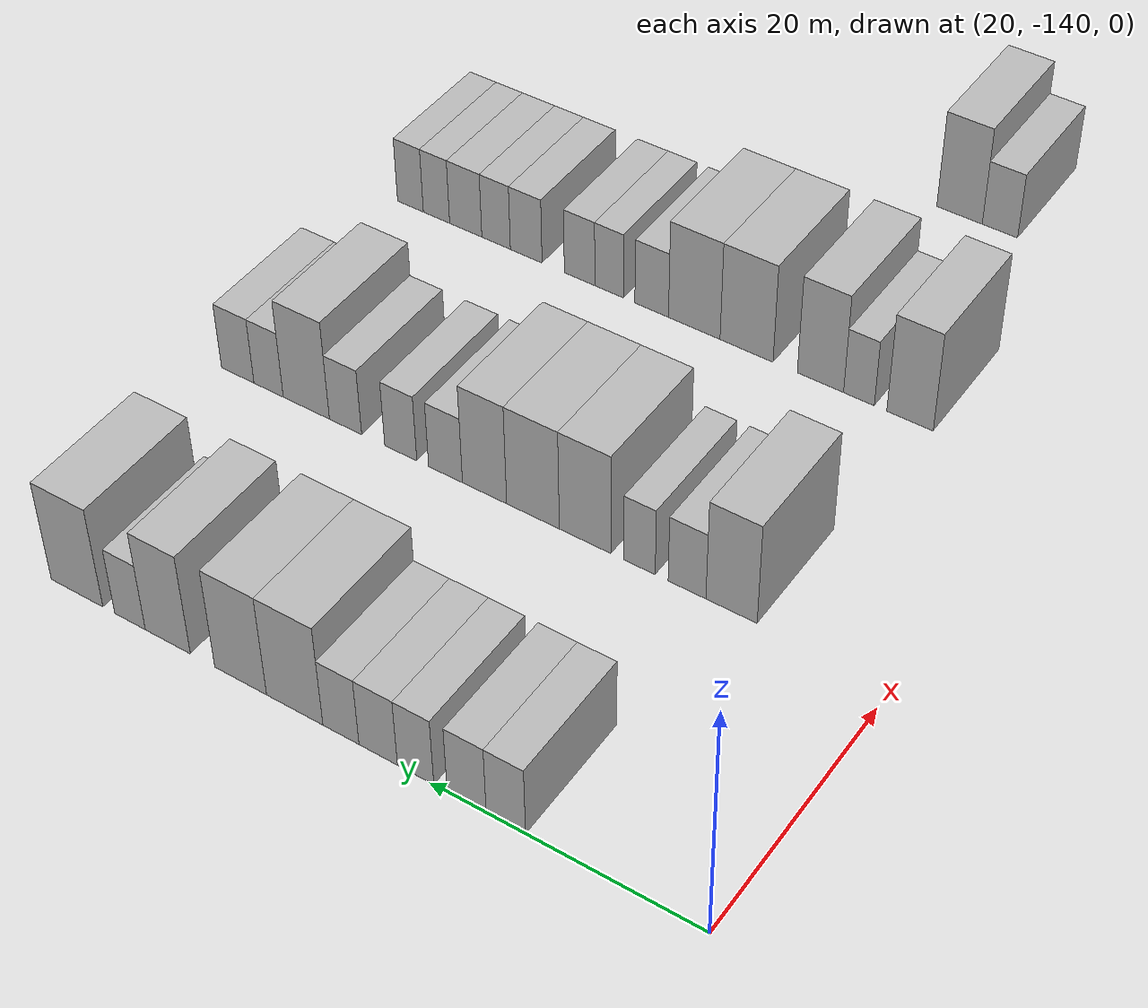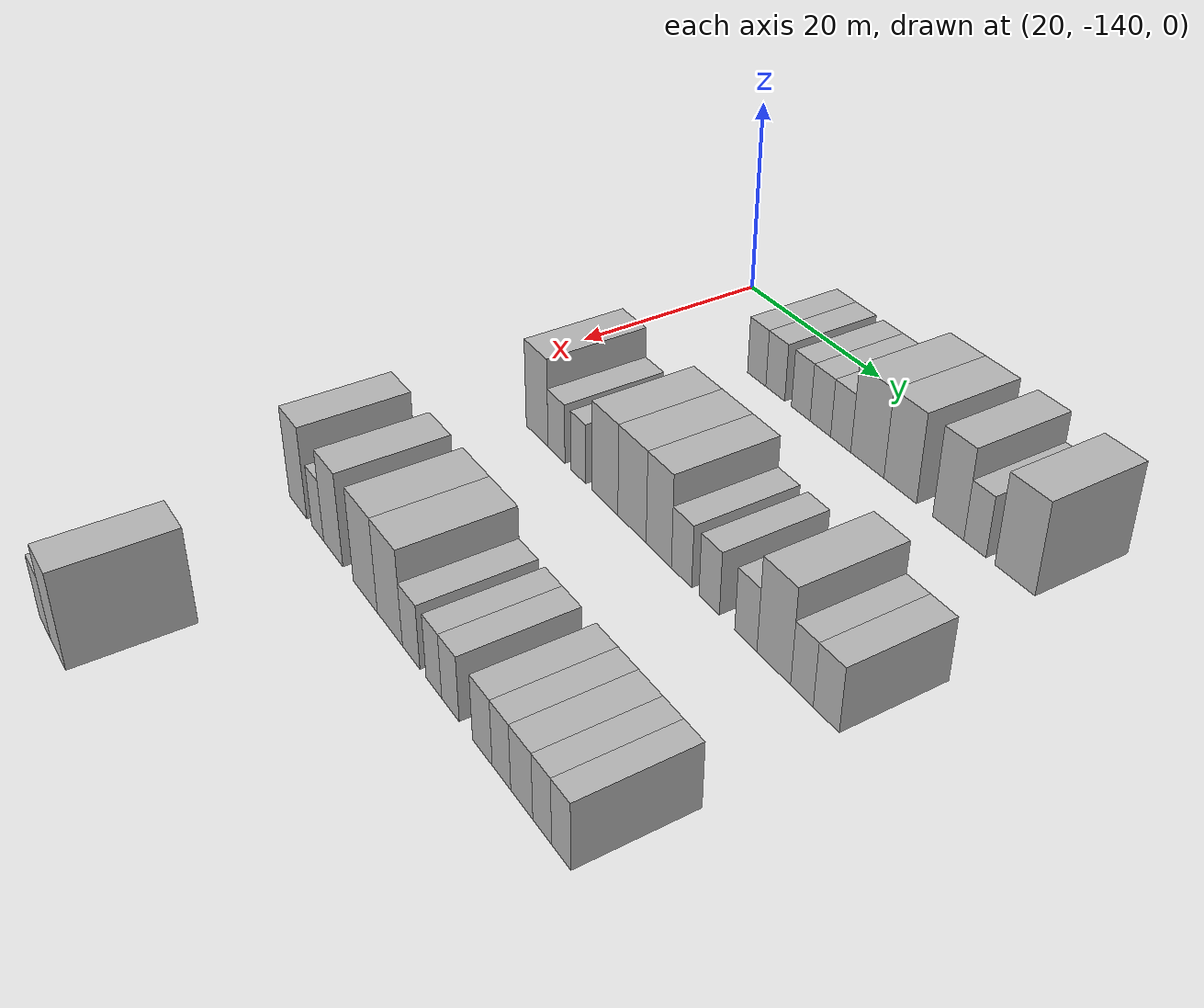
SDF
<sdf version="1.6">
 <world name="default">
  <model name="building_68">
   <static>1</static>
   <pose>25.0000 -125.6321 0 0.000000 0.000000 0.000000</pose>
   <link name="link">
    <pose>0 0 3.00 0 0 0</pose>
    <collision name="collision"><geometry><box><size>10.0000 2.8775 6.0000</size></box></geometry></collision>
    <visual name="visual">
     <cast_shadows>0</cast_shadows>
     <geometry><box><size>10.0000 2.8775 6.0000</size></box></geometry>
     <material>
      <script>
       <uri>model://HANNAS_wall/materials/scripts</uri>
       <uri>model://HANNAS_wall/materials/textures</uri>
       <name>vrc/HANNAS_wall</name>
      </script>
     </material>
    </visual>
   </link>
  </model>
  <model name="building_69">
   <static>1</static>
   <pose>25.0000 -122.7486 0 0.000000 0.000000 0.000000</pose>
   <link name="link">
    <pose>0 0 3.00 0 0 0</pose>
    <collision name="collision"><geometry><box><size>10.0000 2.8895 6.0000</size></box></geometry></collision>
    <visual name="visual">
     <cast_shadows>0</cast_shadows>
     <geometry><box><size>10.0000 2.8895 6.0000</size></box></geometry>
     <material>
      <script>
       <uri>model://HANNAS_wall/materials/scripts</uri>
       <uri>model://HANNAS_wall/materials/textures</uri>
       <name>vrc/HANNAS_wall</name>
      </script>
     </material>
    </visual>
   </link>
  </model>
  <model name="building_70">
   <static>1</static>
   <pose>25.0000 -118.9304 0 0.000000 0.000000 0.000000</pose>
   <link name="link">
    <pose>0 0 3.00 0 0 0</pose>
    <collision name="collision"><geometry><box><size>10.0000 2.7469 6.0000</size></box></geometry></collision>
    <visual name="visual">
     <cast_shadows>0</cast_shadows>
     <geometry><box><size>10.0000 2.7469 6.0000</size></box></geometry>
     <material>
      <script>
       <uri>model://HANNAS_wall/materials/scripts</uri>
       <uri>model://HANNAS_wall/materials/textures</uri>
       <name>vrc/HANNAS_wall</name>
      </script>
     </material>
    </visual>
   </link>
  </model>
  <model name="building_71">
   <static>1</static>
   <pose>25.0000 -116.0844 0 0.000000 0.000000 0.000000</pose>
   <link name="link">
    <pose>0 0 3.00 0 0 0</pose>
    <collision name="collision"><geometry><box><size>10.0000 2.9451 6.0000</size></box></geometry></collision>
    <visual name="visual">
     <cast_shadows>0</cast_shadows>
     <geometry><box><size>10.0000 2.9451 6.0000</size></box></geometry>
     <material>
      <script>
       <uri>model://HANNAS_wall/materials/scripts</uri>
       <uri>model://HANNAS_wall/materials/textures</uri>
       <name>vrc/HANNAS_wall</name>
      </script>
     </material>
    </visual>
   </link>
  </model>
  <model name="building_72">
   <static>1</static>
   <pose>25.0000 -113.2087 0 0.000000 0.000000 0.000000</pose>
   <link name="link">
    <pose>0 0 3.00 0 0 0</pose>
    <collision name="collision"><geometry><box><size>10.0000 2.8061 6.0000</size></box></geometry></collision>
    <visual name="visual">
     <cast_shadows>0</cast_shadows>
     <geometry><box><size>10.0000 2.8061 6.0000</size></box></geometry>
     <material>
      <script>
       <uri>model://HANNAS_wall/materials/scripts</uri>
       <uri>model://HANNAS_wall/materials/textures</uri>
       <name>vrc/HANNAS_wall</name>
      </script>
     </material>
    </visual>
   </link>
  </model>
  <model name="building_73">
   <static>1</static>
   <pose>25.0000 -109.5785 0 0.000000 0.000000 0.000000</pose>
   <link name="link">
    <pose>0 0 4.50 0 0 0</pose>
    <collision name="collision"><geometry><box><size>10.0000 4.4544 9.0000</size></box></geometry></collision>
    <visual name="visual">
     <cast_shadows>0</cast_shadows>
     <geometry><box><size>10.0000 4.4544 9.0000</size></box></geometry>
     <material>
      <script>
       <uri>model://HANNAS_wall/materials/scripts</uri>
       <uri>model://HANNAS_wall/materials/textures</uri>
       <name>vrc/HANNAS_wall</name>
      </script>
     </material>
    </visual>
   </link>
  </model>
  <model name="building_74">
   <static>1</static>
   <pose>25.0000 -105.2569 0 0.000000 0.000000 0.000000</pose>
   <link name="link">
    <pose>0 0 4.50 0 0 0</pose>
    <collision name="collision"><geometry><box><size>10.0000 4.1887 9.0000</size></box></geometry></collision>
    <visual name="visual">
     <cast_shadows>0</cast_shadows>
     <geometry><box><size>10.0000 4.1887 9.0000</size></box></geometry>
     <material>
      <script>
       <uri>model://HANNAS_wall/materials/scripts</uri>
       <uri>model://HANNAS_wall/materials/textures</uri>
       <name>vrc/HANNAS_wall</name>
      </script>
     </material>
    </visual>
   </link>
  </model>
  <model name="building_75">
   <static>1</static>
   <pose>25.0000 -99.2882 0 0.000000 0.000000 0.000000</pose>
   <link name="link">
    <pose>0 0 4.50 0 0 0</pose>
    <collision name="collision"><geometry><box><size>10.0000 3.7487 9.0000</size></box></geometry></collision>
    <visual name="visual">
     <cast_shadows>0</cast_shadows>
     <geometry><box><size>10.0000 3.7487 9.0000</size></box></geometry>
     <material>
      <script>
       <uri>model://HANNAS_wall/materials/scripts</uri>
       <uri>model://HANNAS_wall/materials/textures</uri>
       <name>vrc/HANNAS_wall</name>
      </script>
     </material>
    </visual>
   </link>
  </model>
  <model name="building_76">
   <static>1</static>
   <pose>25.0000 -96.1203 0 0.000000 0.000000 0.000000</pose>
   <link name="link">
    <pose>0 0 3.00 0 0 0</pose>
    <collision name="collision"><geometry><box><size>10.0000 2.5872 6.0000</size></box></geometry></collision>
    <visual name="visual">
     <cast_shadows>0</cast_shadows>
     <geometry><box><size>10.0000 2.5872 6.0000</size></box></geometry>
     <material>
      <script>
       <uri>model://HANNAS_wall/materials/scripts</uri>
       <uri>model://HANNAS_wall/materials/textures</uri>
       <name>vrc/HANNAS_wall</name>
      </script>
     </material>
    </visual>
   </link>
  </model>
  <model name="building_77">
   <static>1</static>
   <pose>25.0000 -91.6001 0 0.000000 0.000000 0.000000</pose>
   <link name="link">
    <pose>0 0 4.50 0 0 0</pose>
    <collision name="collision"><geometry><box><size>10.0000 4.4531 9.0000</size></box></geometry></collision>
    <visual name="visual">
     <cast_shadows>0</cast_shadows>
     <geometry><box><size>10.0000 4.4531 9.0000</size></box></geometry>
     <material>
      <script>
       <uri>model://HANNAS_wall/materials/scripts</uri>
       <uri>model://HANNAS_wall/materials/textures</uri>
       <name>vrc/HANNAS_wall</name>
      </script>
     </material>
    </visual>
   </link>
  </model>
  <model name="building_234">
   <static>1</static>
   <pose>47.0000 -128.1214 0 0.000000 0.000000 0.000000</pose>
   <link name="link">
    <pose>0 0 4.50 0 0 0</pose>
    <collision name="collision"><geometry><box><size>10.0000 3.8833 9.0000</size></box></geometry></collision>
    <visual name="visual">
     <cast_shadows>0</cast_shadows>
     <geometry><box><size>10.0000 3.8833 9.0000</size></box></geometry>
     <material>
      <script>
       <uri>model://HANNAS_wall/materials/scripts</uri>
       <uri>model://HANNAS_wall/materials/textures</uri>
       <name>vrc/HANNAS_wall</name>
      </script>
     </material>
    </visual>
   </link>
  </model>
  <model name="building_235">
   <static>1</static>
   <pose>47.0000 -124.7297 0 0.000000 0.000000 0.000000</pose>
   <link name="link">
    <pose>0 0 3.00 0 0 0</pose>
    <collision name="collision"><geometry><box><size>10.0000 2.9000 6.0000</size></box></geometry></collision>
    <visual name="visual">
     <cast_shadows>0</cast_shadows>
     <geometry><box><size>10.0000 2.9000 6.0000</size></box></geometry>
     <material>
      <script>
       <uri>model://HANNAS_wall/materials/scripts</uri>
       <uri>model://HANNAS_wall/materials/textures</uri>
       <name>vrc/HANNAS_wall</name>
      </script>
     </material>
    </visual>
   </link>
  </model>
  <model name="building_236">
   <static>1</static>
   <pose>47.0000 -121.0456 0 0.000000 0.000000 0.000000</pose>
   <link name="link">
    <pose>0 0 3.00 0 0 0</pose>
    <collision name="collision"><geometry><box><size>10.0000 2.4681 6.0000</size></box></geometry></collision>
    <visual name="visual">
     <cast_shadows>0</cast_shadows>
     <geometry><box><size>10.0000 2.4681 6.0000</size></box></geometry>
     <material>
      <script>
       <uri>model://HANNAS_wall/materials/scripts</uri>
       <uri>model://HANNAS_wall/materials/textures</uri>
       <name>vrc/HANNAS_wall</name>
      </script>
     </material>
    </visual>
   </link>
  </model>
  <model name="building_237">
   <static>1</static>
   <pose>47.0000 -116.7533 0 0.000000 0.000000 0.000000</pose>
   <link name="link">
    <pose>0 0 4.50 0 0 0</pose>
    <collision name="collision"><geometry><box><size>10.0000 4.1167 9.0000</size></box></geometry></collision>
    <visual name="visual">
     <cast_shadows>0</cast_shadows>
     <geometry><box><size>10.0000 4.1167 9.0000</size></box></geometry>
     <material>
      <script>
       <uri>model://HANNAS_wall/materials/scripts</uri>
       <uri>model://HANNAS_wall/materials/textures</uri>
       <name>vrc/HANNAS_wall</name>
      </script>
     </material>
    </visual>
   </link>
  </model>
  <model name="building_238">
   <static>1</static>
   <pose>47.0000 -112.5541 0 0.000000 0.000000 0.000000</pose>
   <link name="link">
    <pose>0 0 4.50 0 0 0</pose>
    <collision name="collision"><geometry><box><size>10.0000 4.2816 9.0000</size></box></geometry></collision>
    <visual name="visual">
     <cast_shadows>0</cast_shadows>
     <geometry><box><size>10.0000 4.2816 9.0000</size></box></geometry>
     <material>
      <script>
       <uri>model://HANNAS_wall/materials/scripts</uri>
       <uri>model://HANNAS_wall/materials/textures</uri>
       <name>vrc/HANNAS_wall</name>
      </script>
     </material>
    </visual>
   </link>
  </model>
  <model name="building_239">
   <static>1</static>
   <pose>47.0000 -108.5818 0 0.000000 0.000000 0.000000</pose>
   <link name="link">
    <pose>0 0 4.50 0 0 0</pose>
    <collision name="collision"><geometry><box><size>10.0000 3.6629 9.0000</size></box></geometry></collision>
    <visual name="visual">
     <cast_shadows>0</cast_shadows>
     <geometry><box><size>10.0000 3.6629 9.0000</size></box></geometry>
     <material>
      <script>
       <uri>model://HANNAS_wall/materials/scripts</uri>
       <uri>model://HANNAS_wall/materials/textures</uri>
       <name>vrc/HANNAS_wall</name>
      </script>
     </material>
    </visual>
   </link>
  </model>
  <model name="building_240">
   <static>1</static>
   <pose>47.0000 -105.3297 0 0.000000 0.000000 0.000000</pose>
   <link name="link">
    <pose>0 0 3.00 0 0 0</pose>
    <collision name="collision"><geometry><box><size>10.0000 2.8414 6.0000</size></box></geometry></collision>
    <visual name="visual">
     <cast_shadows>0</cast_shadows>
     <geometry><box><size>10.0000 2.8414 6.0000</size></box></geometry>
     <material>
      <script>
       <uri>model://HANNAS_wall/materials/scripts</uri>
       <uri>model://HANNAS_wall/materials/textures</uri>
       <name>vrc/HANNAS_wall</name>
      </script>
     </material>
    </visual>
   </link>
  </model>
  <model name="building_241">
   <static>1</static>
   <pose>47.0000 -101.5407 0 0.000000 0.000000 0.000000</pose>
   <link name="link">
    <pose>0 0 3.00 0 0 0</pose>
    <collision name="collision"><geometry><box><size>10.0000 2.7366 6.0000</size></box></geometry></collision>
    <visual name="visual">
     <cast_shadows>0</cast_shadows>
     <geometry><box><size>10.0000 2.7366 6.0000</size></box></geometry>
     <material>
      <script>
       <uri>model://HANNAS_wall/materials/scripts</uri>
       <uri>model://HANNAS_wall/materials/textures</uri>
       <name>vrc/HANNAS_wall</name>
      </script>
     </material>
    </visual>
   </link>
  </model>
  <model name="building_242">
   <static>1</static>
   <pose>47.0000 -96.7659 0 0.000000 0.000000 0.000000</pose>
   <link name="link">
    <pose>0 0 3.00 0 0 0</pose>
    <collision name="collision"><geometry><box><size>10.0000 2.8129 6.0000</size></box></geometry></collision>
    <visual name="visual">
     <cast_shadows>0</cast_shadows>
     <geometry><box><size>10.0000 2.8129 6.0000</size></box></geometry>
     <material>
      <script>
       <uri>model://HANNAS_wall/materials/scripts</uri>
       <uri>model://HANNAS_wall/materials/textures</uri>
       <name>vrc/HANNAS_wall</name>
      </script>
     </material>
    </visual>
   </link>
  </model>
  <model name="building_243">
   <static>1</static>
   <pose>47.0000 -93.3138 0 0.000000 0.000000 0.000000</pose>
   <link name="link">
    <pose>0 0 4.50 0 0 0</pose>
    <collision name="collision"><geometry><box><size>10.0000 4.0915 9.0000</size></box></geometry></collision>
    <visual name="visual">
     <cast_shadows>0</cast_shadows>
     <geometry><box><size>10.0000 4.0915 9.0000</size></box></geometry>
     <material>
      <script>
       <uri>model://HANNAS_wall/materials/scripts</uri>
       <uri>model://HANNAS_wall/materials/textures</uri>
       <name>vrc/HANNAS_wall</name>
      </script>
     </material>
    </visual>
   </link>
  </model>
  <model name="building_244">
   <static>1</static>
   <pose>47.0000 -89.9505 0 0.000000 0.000000 0.000000</pose>
   <link name="link">
    <pose>0 0 3.00 0 0 0</pose>
    <collision name="collision"><geometry><box><size>10.0000 2.6350 6.0000</size></box></geometry></collision>
    <visual name="visual">
     <cast_shadows>0</cast_shadows>
     <geometry><box><size>10.0000 2.6350 6.0000</size></box></geometry>
     <material>
      <script>
       <uri>model://HANNAS_wall/materials/scripts</uri>
       <uri>model://HANNAS_wall/materials/textures</uri>
       <name>vrc/HANNAS_wall</name>
      </script>
     </material>
    </visual>
   </link>
  </model>
  <model name="building_245">
   <static>1</static>
   <pose>47.0000 -87.1586 0 0.000000 0.000000 0.000000</pose>
   <link name="link">
    <pose>0 0 3.00 0 0 0</pose>
    <collision name="collision"><geometry><box><size>10.0000 2.9489 6.0000</size></box></geometry></collision>
    <visual name="visual">
     <cast_shadows>0</cast_shadows>
     <geometry><box><size>10.0000 2.9489 6.0000</size></box></geometry>
     <material>
      <script>
       <uri>model://HANNAS_wall/materials/scripts</uri>
       <uri>model://HANNAS_wall/materials/textures</uri>
       <name>vrc/HANNAS_wall</name>
      </script>
     </material>
    </visual>
   </link>
  </model>
  <model name="building_425">
   <static>1</static>
   <pose>69.0000 -129.3531 0 0.000000 0.000000 0.000000</pose>
   <link name="link">
    <pose>0 0 4.50 0 0 0</pose>
    <collision name="collision"><geometry><box><size>10.0000 3.6675 9.0000</size></box></geometry></collision>
    <visual name="visual">
     <cast_shadows>0</cast_shadows>
     <geometry><box><size>10.0000 3.6675 9.0000</size></box></geometry>
     <material>
      <script>
       <uri>model://HANNAS_wall/materials/scripts</uri>
       <uri>model://HANNAS_wall/materials/textures</uri>
       <name>vrc/HANNAS_wall</name>
      </script>
     </material>
    </visual>
   </link>
  </model>
  <model name="building_426">
   <static>1</static>
   <pose>69.0000 -125.2869 0 0.000000 0.000000 0.000000</pose>
   <link name="link">
    <pose>0 0 3.00 0 0 0</pose>
    <collision name="collision"><geometry><box><size>10.0000 2.4648 6.0000</size></box></geometry></collision>
    <visual name="visual">
     <cast_shadows>0</cast_shadows>
     <geometry><box><size>10.0000 2.4648 6.0000</size></box></geometry>
     <material>
      <script>
       <uri>model://HANNAS_wall/materials/scripts</uri>
       <uri>model://HANNAS_wall/materials/textures</uri>
       <name>vrc/HANNAS_wall</name>
      </script>
     </material>
    </visual>
   </link>
  </model>
  <model name="building_427">
   <static>1</static>
   <pose>69.0000 -122.1708 0 0.000000 0.000000 0.000000</pose>
   <link name="link">
    <pose>0 0 4.50 0 0 0</pose>
    <collision name="collision"><geometry><box><size>10.0000 3.7676 9.0000</size></box></geometry></collision>
    <visual name="visual">
     <cast_shadows>0</cast_shadows>
     <geometry><box><size>10.0000 3.7676 9.0000</size></box></geometry>
     <material>
      <script>
       <uri>model://HANNAS_wall/materials/scripts</uri>
       <uri>model://HANNAS_wall/materials/textures</uri>
       <name>vrc/HANNAS_wall</name>
      </script>
     </material>
    </visual>
   </link>
  </model>
  <model name="building_428">
   <static>1</static>
   <pose>69.0000 -116.0687 0 0.000000 0.000000 0.000000</pose>
   <link name="link">
    <pose>0 0 4.50 0 0 0</pose>
    <collision name="collision"><geometry><box><size>10.0000 4.4365 9.0000</size></box></geometry></collision>
    <visual name="visual">
     <cast_shadows>0</cast_shadows>
     <geometry><box><size>10.0000 4.4365 9.0000</size></box></geometry>
     <material>
      <script>
       <uri>model://HANNAS_wall/materials/scripts</uri>
       <uri>model://HANNAS_wall/materials/textures</uri>
       <name>vrc/HANNAS_wall</name>
      </script>
     </material>
    </visual>
   </link>
  </model>
  <model name="building_429">
   <static>1</static>
   <pose>69.0000 -111.6551 0 0.000000 0.000000 0.000000</pose>
   <link name="link">
    <pose>0 0 4.50 0 0 0</pose>
    <collision name="collision"><geometry><box><size>10.0000 4.3907 9.0000</size></box></geometry></collision>
    <visual name="visual">
     <cast_shadows>0</cast_shadows>
     <geometry><box><size>10.0000 4.3907 9.0000</size></box></geometry>
     <material>
      <script>
       <uri>model://HANNAS_wall/materials/scripts</uri>
       <uri>model://HANNAS_wall/materials/textures</uri>
       <name>vrc/HANNAS_wall</name>
      </script>
     </material>
    </visual>
   </link>
  </model>
  <model name="building_430">
   <static>1</static>
   <pose>69.0000 -108.0057 0 0.000000 0.000000 0.000000</pose>
   <link name="link">
    <pose>0 0 3.00 0 0 0</pose>
    <collision name="collision"><geometry><box><size>10.0000 2.9081 6.0000</size></box></geometry></collision>
    <visual name="visual">
     <cast_shadows>0</cast_shadows>
     <geometry><box><size>10.0000 2.9081 6.0000</size></box></geometry>
     <material>
      <script>
       <uri>model://HANNAS_wall/materials/scripts</uri>
       <uri>model://HANNAS_wall/materials/textures</uri>
       <name>vrc/HANNAS_wall</name>
      </script>
     </material>
    </visual>
   </link>
  </model>
  <model name="building_431">
   <static>1</static>
   <pose>69.0000 -104.2964 0 0.000000 0.000000 0.000000</pose>
   <link name="link">
    <pose>0 0 3.00 0 0 0</pose>
    <collision name="collision"><geometry><box><size>10.0000 2.5105 6.0000</size></box></geometry></collision>
    <visual name="visual">
     <cast_shadows>0</cast_shadows>
     <geometry><box><size>10.0000 2.5105 6.0000</size></box></geometry>
     <material>
      <script>
       <uri>model://HANNAS_wall/materials/scripts</uri>
       <uri>model://HANNAS_wall/materials/textures</uri>
       <name>vrc/HANNAS_wall</name>
      </script>
     </material>
    </visual>
   </link>
  </model>
  <model name="building_432">
   <static>1</static>
   <pose>69.0000 -101.6892 0 0.000000 0.000000 0.000000</pose>
   <link name="link">
    <pose>0 0 3.00 0 0 0</pose>
    <collision name="collision"><geometry><box><size>10.0000 2.7039 6.0000</size></box></geometry></collision>
    <visual name="visual">
     <cast_shadows>0</cast_shadows>
     <geometry><box><size>10.0000 2.7039 6.0000</size></box></geometry>
     <material>
      <script>
       <uri>model://HANNAS_wall/materials/scripts</uri>
       <uri>model://HANNAS_wall/materials/textures</uri>
       <name>vrc/HANNAS_wall</name>
      </script>
     </material>
    </visual>
   </link>
  </model>
  <model name="building_433">
   <static>1</static>
   <pose>69.0000 -96.9033 0 0.000000 0.000000 0.000000</pose>
   <link name="link">
    <pose>0 0 3.00 0 0 0</pose>
    <collision name="collision"><geometry><box><size>10.0000 2.8678 6.0000</size></box></geometry></collision>
    <visual name="visual">
     <cast_shadows>0</cast_shadows>
     <geometry><box><size>10.0000 2.8678 6.0000</size></box></geometry>
     <material>
      <script>
       <uri>model://HANNAS_wall/materials/scripts</uri>
       <uri>model://HANNAS_wall/materials/textures</uri>
       <name>vrc/HANNAS_wall</name>
      </script>
     </material>
    </visual>
   </link>
  </model>
  <model name="building_434">
   <static>1</static>
   <pose>69.0000 -94.1615 0 0.000000 0.000000 0.000000</pose>
   <link name="link">
    <pose>0 0 3.00 0 0 0</pose>
    <collision name="collision"><geometry><box><size>10.0000 2.6158 6.0000</size></box></geometry></collision>
    <visual name="visual">
     <cast_shadows>0</cast_shadows>
     <geometry><box><size>10.0000 2.6158 6.0000</size></box></geometry>
     <material>
      <script>
       <uri>model://HANNAS_wall/materials/scripts</uri>
       <uri>model://HANNAS_wall/materials/textures</uri>
       <name>vrc/HANNAS_wall</name>
      </script>
     </material>
    </visual>
   </link>
  </model>
  <model name="building_435">
   <static>1</static>
   <pose>69.0000 -91.3620 0 0.000000 0.000000 0.000000</pose>
   <link name="link">
    <pose>0 0 3.00 0 0 0</pose>
    <collision name="collision"><geometry><box><size>10.0000 2.9832 6.0000</size></box></geometry></collision>
    <visual name="visual">
     <cast_shadows>0</cast_shadows>
     <geometry><box><size>10.0000 2.9832 6.0000</size></box></geometry>
     <material>
      <script>
       <uri>model://HANNAS_wall/materials/scripts</uri>
       <uri>model://HANNAS_wall/materials/textures</uri>
       <name>vrc/HANNAS_wall</name>
      </script>
     </material>
    </visual>
   </link>
  </model>
  <model name="building_436">
   <static>1</static>
   <pose>69.0000 -88.6391 0 0.000000 0.000000 0.000000</pose>
   <link name="link">
    <pose>0 0 3.00 0 0 0</pose>
    <collision name="collision"><geometry><box><size>10.0000 2.4626 6.0000</size></box></geometry></collision>
    <visual name="visual">
     <cast_shadows>0</cast_shadows>
     <geometry><box><size>10.0000 2.4626 6.0000</size></box></geometry>
     <material>
      <script>
       <uri>model://HANNAS_wall/materials/scripts</uri>
       <uri>model://HANNAS_wall/materials/textures</uri>
       <name>vrc/HANNAS_wall</name>
      </script>
     </material>
    </visual>
   </link>
  </model>
  <model name="building_437">
   <static>1</static>
   <pose>69.0000 -86.1884 0 0.000000 0.000000 0.000000</pose>
   <link name="link">
    <pose>0 0 3.00 0 0 0</pose>
    <collision name="collision"><geometry><box><size>10.0000 2.4389 6.0000</size></box></geometry></collision>
    <visual name="visual">
     <cast_shadows>0</cast_shadows>
     <geometry><box><size>10.0000 2.4389 6.0000</size></box></geometry>
     <material>
      <script>
       <uri>model://HANNAS_wall/materials/scripts</uri>
       <uri>model://HANNAS_wall/materials/textures</uri>
       <name>vrc/HANNAS_wall</name>
      </script>
     </material>
    </visual>
   </link>
  </model>
  <model name="building_620">
   <static>1</static>
   <pose>91.0000 -125.1904 0 0.000000 0.000000 0.000000</pose>
   <link name="link">
    <pose>0 0 3.00 0 0 0</pose>
    <collision name="collision"><geometry><box><size>10.0000 2.9797 6.0000</size></box></geometry></collision>
    <visual name="visual">
     <cast_shadows>0</cast_shadows>
     <geometry><box><size>10.0000 2.9797 6.0000</size></box></geometry>
     <material>
      <script>
       <uri>model://HANNAS_wall/materials/scripts</uri>
       <uri>model://HANNAS_wall/materials/textures</uri>
       <name>vrc/HANNAS_wall</name>
      </script>
     </material>
    </visual>
   </link>
  </model>
  <model name="building_621">
   <static>1</static>
   <pose>91.0000 -121.7592 0 0.000000 0.000000 0.000000</pose>
   <link name="link">
    <pose>0 0 4.50 0 0 0</pose>
    <collision name="collision"><geometry><box><size>10.0000 3.8826 9.0000</size></box></geometry></collision>
    <visual name="visual">
     <cast_shadows>0</cast_shadows>
     <geometry><box><size>10.0000 3.8826 9.0000</size></box></geometry>
     <material>
      <script>
       <uri>model://HANNAS_wall/materials/scripts</uri>
       <uri>model://HANNAS_wall/materials/textures</uri>
       <name>vrc/HANNAS_wall</name>
      </script>
     </material>
    </visual>
   </link>
  </model>
 </world>
</sdf>
